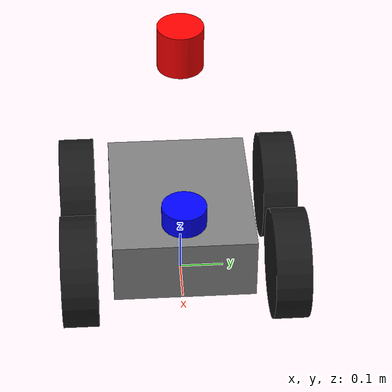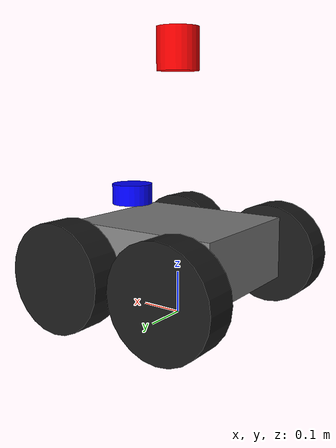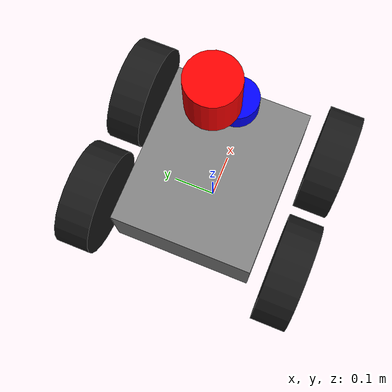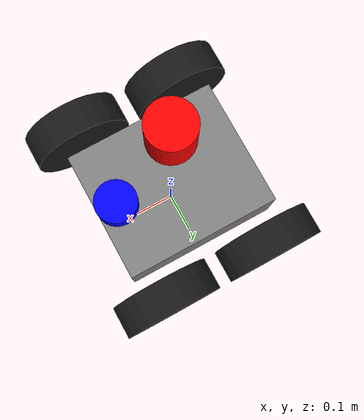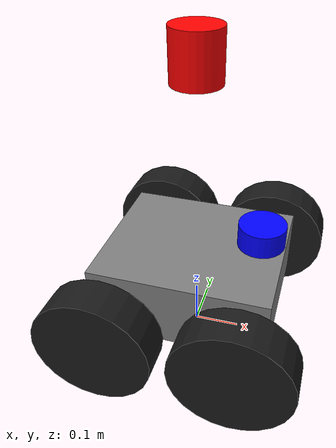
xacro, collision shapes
<?xml version="1.0"?>
<robot
  xmlns:xacro="http://ros.org/wiki/xacro"
  xmlns:controller="http://playerstage.sourceforge.net/gazebo/xmlschema/#controller"
  xmlns:interface="http://playerstage.sourceforge.net/gazebo/xmlschema/#interface"
  xmlns:sensor="http://playerstage.sourceforge.net/gazebo/xmlschema/#sensor"
  name="robot">

  <xacro:arg name="laser3d_collision" default="true"/>
  <xacro:arg name="body_height" default="0.15"/>
  <xacro:arg name="body_length" default="0.38"/>
  <xacro:arg name="body_width" default="0.32"/>
  <xacro:arg name="wheel_radius" default="0.125"/>
  <xacro:arg name="laser2d_mount_z" default="0.125"/>
  <xacro:arg name="laser3d_mount_z" default="0.475"/>
  <xacro:arg name="slope_aware_drive" default="false"/>

  <xacro:include filename="$(find mesh_navigation_tutorials_sim)/urdf/common.urdf.xacro" />
  <xacro:include filename="$(find mesh_navigation_tutorials_sim)/urdf/wheel.urdf.xacro" />

  <xacro:property name="M_PI" value="3.14159265359"/>

  <xacro:property name="imu_stdev" value="0.0001" />

  <xacro:property name="body_height" value="$(arg body_height)"/>
  <xacro:property name="body_length" value="$(arg body_length)"/>
  <xacro:property name="body_width" value="$(arg body_width)"/>

  <xacro:property name="axis_front" value="0.14"/>
  <xacro:property name="axis_back" value="-0.14"/>

  <xacro:property name="wheel_thickness" value="0.08"/>
  <xacro:property name="wheel_body_offset" value="${wheel_thickness/2 + 0.035}"/>
  <xacro:property name="wheel_radius" value="$(arg wheel_radius)"/>
  <xacro:property name="axis_height" value="-0.03"/>
  <xacro:property name="axis_right" value="${-body_width/2 - wheel_body_offset}"/>
  <xacro:property name="axis_left" value="${body_width/2 + wheel_body_offset}"/>
  <xacro:property name="axis_length" value="${body_width + 2 * wheel_body_offset}" />
  <xacro:property name="turning_adaptation" value="2.95" />

  <xacro:property name="body_mass" value="25.0"/>
  <xacro:property name="wheel_mass" value="5.0"/>

  <xacro:property name="imu_width" value="0.036"/>
  <xacro:property name="imu_length" value="0.038"/>
  <xacro:property name="imu_height" value="0.012"/>

  <xacro:property name="imu_offset_x" value="0"/>
  <xacro:property name="imu_offset_y" value="0"/>
  <xacro:property name="imu_offset_z" value="${- body_height/2 + 0.005 + 0.007}"/>

  <xacro:property name="em_body_length" value="0.11"/>
  <xacro:property name="em_body_width" value="0.04"/>
  <xacro:property name="em_body_height" value="0.03"/>

  <xacro:property name="em_button_radius" value="0.0125"/>
  <xacro:property name="em_button_depth" value="0.02" />

  <link name="base_footprint"/>
  <link name="base_link">
    <visual>
      <origin xyz="0 0 0" rpy="0 0 0" />
      <geometry>
        <box size="${body_length} ${body_width} ${body_height}"/>
      </geometry>
      <material name="silver" >
        <color rgba="0.5 0.5 0.5 1" />
      </material>
    </visual>
    <collision>
      <origin xyz="0 0 0" rpy="0 0 0" />
      <geometry>
        <box size="${body_length} ${body_width} ${body_height}"/>
      </geometry>
    </collision>
    <xacro:box_inertial
      x="${body_length}"
      y="${body_width}"
      z="${body_height}"
      mass="${body_mass}"/>
  </link>

  <joint name="base_footprint_to_base_joint" type="fixed">
    <origin xyz="0 0 ${wheel_radius - axis_height}" rpy="0 0 0" />
    <parent link="base_footprint"/>
    <child link="base_link" />
  </joint>

  <xacro:wheel name="left_front_wheel" parent="base_link">
    <origin xyz="${axis_front} ${axis_left} ${axis_height}" rpy="0 0 0"/>
  </xacro:wheel>

  <xacro:wheel name="left_rear_wheel" parent="base_link">
    <origin xyz="${axis_back} ${axis_left} ${axis_height}" rpy="0 0 0" />
  </xacro:wheel>

  <xacro:wheel name="right_front_wheel" parent="base_link">
    <origin xyz="${axis_front} ${axis_right} ${axis_height}" rpy="0 0 0"/>
  </xacro:wheel>

  <xacro:wheel name="right_rear_wheel" parent="base_link">
    <origin xyz="${axis_back} ${axis_right} ${axis_height}" rpy="0 0 0" />
  </xacro:wheel>

  <link name="imu">
    <visual>
      <origin xyz="0 0 0" rpy="0 0 0" />
      <geometry>
        <box size="${imu_length} ${imu_width} ${imu_height}"/>
      </geometry>
      <material name="white" >
        <color rgba="0.8 0.8 0.8 1" />
      </material>
    </visual>
  </link>

  <joint name="imu_to_base_joint" type="fixed">
    <parent link="base_link" />
    <child link="imu" />
    <origin xyz="${imu_offset_x} ${imu_offset_y} ${imu_offset_z}" rpy="${M_PI} 0 ${M_PI/2.0}" />
  </joint>

  <link name="laser2d">
    <visual>
      <origin xyz="0 0 0" rpy="0 0 0" />
      <geometry>
        <cylinder radius="0.05" length="0.05"/>
      </geometry>
      <material name="blue" >
        <color rgba="0 0 1 1" />
      </material>
    </visual>
    <collision>
      <geometry>
        <cylinder radius="0.05" length="0.05"/>
      </geometry>
    </collision>
     <xacro:cylinder_inertial
      radius="0.05"
      length="0.05"
      mass="0.05"
      />
  </link>

  <joint name="laser2d_to_base_joint" type="fixed">
    <parent link="base_link" />
    <child link="laser2d" />
    <origin xyz="${body_length/2 - 0.05} 0 $(arg laser2d_mount_z)"/>
  </joint>

  <link name="laser3d">
    <visual>
      <origin xyz="0 0 0" rpy="0 0 0" />
      <geometry>
        <cylinder radius="0.05" length="0.1"/>
      </geometry>
      <material name="red" >
        <color rgba="1 0 0 1" />
      </material>
    </visual>
    <xacro:if value="$(arg laser3d_collision)">
      <collision>
        <geometry>
          <cylinder radius="0.05" length="0.1"/>
        </geometry>
      </collision>
    </xacro:if>
     <xacro:cylinder_inertial
      radius="0.05"
      length="0.1"
      mass="0.1"
      />
  </link>

  <joint name="laser3d_to_base_joint" type="fixed">
    <parent link="base_link" />
    <child link="laser3d" />
    <origin xyz="0 0 $(arg laser3d_mount_z)"/>
  </joint>

  <!-- Gazebo Plugins -->

  <gazebo reference="imu" >
    <sensor name="imu" type="imu">
      <always_on>1</always_on>
      <update_rate>100</update_rate>
      <visualize>false</visualize>
      <topic>/model/robot/imu</topic>
      <frame_id>imu</frame_id>
      <gz_frame_id>imu</gz_frame_id>
      <ign_frame_id>imu</ign_frame_id>
    </sensor>
  </gazebo>

  <gazebo reference="laser2d">
    <sensor name="laser2d" type='gpu_lidar'>"
      <pose relative_to='laser2d'>0 0 0 0 0 0</pose>
      <topic>/model/robot/scan</topic>
      <update_rate>10</update_rate>
      <ray>
        <scan>
          <horizontal>
              <samples>270</samples>
              <resolution>1</resolution>
              <min_angle>-2.356194</min_angle>
              <max_angle> 2.356194</max_angle>
          </horizontal>
          <vertical>
              <samples>1</samples>
              <resolution>0.01</resolution>
              <min_angle>0</min_angle>
              <max_angle>0</max_angle>
          </vertical>
        </scan>
        <range>
            <min>0.08</min>
            <max>15.0</max>
            <resolution>0.01</resolution>
        </range>
      </ray>
      <always_on>1</always_on>
      <visualize>true</visualize>
      <frame_id>laser2d</frame_id>
      <gz_frame_id>laser2d</gz_frame_id>
      <ign_frame_id>laser2d</ign_frame_id>
    </sensor>
  </gazebo>

  <gazebo reference="laser3d">
    <sensor name="laser3d" type='gpu_lidar'>"
      <pose relative_to='laser3d'>0 0 0 0 0 0</pose>
      <topic>/model/robot/cloud</topic>
      <update_rate>10</update_rate>
      <ray>
        <scan>
          <horizontal>
              <samples>128</samples>
              <resolution>0.01</resolution>
              <min_angle>${-M_PI}</min_angle>
              <max_angle>${M_PI}</max_angle>
          </horizontal>
          <vertical>
              <samples>32</samples>
              <resolution>0.01</resolution>
              <min_angle>${-32.0 * M_PI / 180.0}</min_angle>
              <max_angle>${32.0 * M_PI / 180.0}</max_angle>
          </vertical>
        </scan>
        <range>
            <min>0.2</min>
            <max>100.0</max>
            <resolution>0.01</resolution>
        </range>
      </ray>
      <always_on>1</always_on>
      <visualize>true</visualize>
      <frame_id>laser3d</frame_id>
      <gz_frame_id>laser3d</gz_frame_id>
      <ign_frame_id>laser3d</ign_frame_id>
    </sensor>
  </gazebo>

  <xacro:if value="$(arg slope_aware_drive)">
    <gazebo>
      <plugin
          filename="libslope_aware_holonomic_drive_system.so"
          name="mesh_navigation_tutorials_sim::SlopeAwareHolonomicDrive">
        <topic>/model/robot/cmd_vel</topic>
        <command_timeout>0.5</command_timeout>
      </plugin>

      <plugin
          filename="libignition-gazebo-odometry-publisher-system.so"
          name="ignition::gazebo::systems::OdometryPublisher">
        <dimensions>2</dimensions>
        <odom_publish_frequency>50</odom_publish_frequency>
        <odom_frame>odom</odom_frame>
        <robot_base_frame>base_footprint</robot_base_frame>
        <odom_topic>/model/robot/odometry</odom_topic>
        <tf_topic>/model/robot/tf_odom</tf_topic>
      </plugin>
    </gazebo>
  </xacro:if>

  <xacro:unless value="$(arg slope_aware_drive)">
    <gazebo>
      <plugin
          filename="libignition-gazebo-diff-drive-system.so"
          name="ignition::gazebo::systems::DiffDrive">
        <num_wheel_pairs>2</num_wheel_pairs>

        <left_joint>left_front_wheel</left_joint>
        <right_joint>right_front_wheel</right_joint>
        <wheel_separation>${axis_length}</wheel_separation>
        <wheel_radius>${wheel_radius}</wheel_radius>

        <left_joint>left_rear_wheel</left_joint>
        <right_joint>right_rear_wheel</right_joint>
        <wheel_separation>${axis_length}</wheel_separation>
        <wheel_radius>${wheel_radius}</wheel_radius>

        <odom_publish_frequency>50</odom_publish_frequency>
        <frame_id>odom</frame_id>
        <child_frame_id>base_footprint</child_frame_id>
        <tf_topic>/model/robot/tf_odom</tf_topic>
      </plugin>
    </gazebo>
  </xacro:unless>

  <gazebo>
    <plugin
      filename="libignition-gazebo-joint-state-publisher-system.so"
      name="ignition::gazebo::systems::JointStatePublisher">
      <joint_name>right_front_wheel</joint_name>
      <joint_name>left_front_wheel</joint_name>
      <joint_name>right_rear_wheel</joint_name>
      <joint_name>left_rear_wheel</joint_name>
      <topic>/model/robot/joint_states</topic>
    </plugin>

  </gazebo>

  <gazebo>
    <plugin
      filename="ignition-gazebo-pose-publisher-system"
      name="gz::sim::systems::PosePublisher">
      <use_pose_vector_msg>true</use_pose_vector_msg>
      <publish_nested_model_pose>true</publish_nested_model_pose>
      <static_publisher>true</static_publisher>
    </plugin>
  </gazebo>

</robot>

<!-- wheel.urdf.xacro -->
<robot xmlns:xacro="http://ros.org/wiki/xacro" name="wheel">
    <xacro:macro name="wheel" params="name parent *joint_pose">
        <link name="${name}_link">

            <visual>
                <origin xyz="0 0 0" rpy="0 0 ${M_PI/2}" />
                <geometry>
                    <!-- The source visual is radius 0.125 m and width 0.08 m. -->
                    <mesh
                      filename="package://mesh_navigation_tutorials_sim/meshes/wheel.stl"
                      scale="${wheel_thickness / 0.08} ${wheel_radius / 0.125} ${wheel_radius / 0.125}"/>
                </geometry>
                <material name="wheelcolor" >
                    <color rgba="0.1 0.1 0.1 1" />
                </material>
            </visual>

            <collision>
                <origin xyz="0 0 0" rpy="${M_PI/2} 0 0" />
                <geometry>
                    <cylinder length="${wheel_thickness}" radius="${wheel_radius}"/>
                </geometry>
            </collision>

            <xacro:cylinder_inertial_with_origin radius="${wheel_radius}" length="${wheel_thickness}" mass="${wheel_mass}">
                <origin xyz="0 0 0" rpy="${M_PI/2} 0 0"/>
            </xacro:cylinder_inertial_with_origin>
        </link>

        <gazebo reference="${name}_link">
            <mu1 value="1.0"/>
            <mu2 value="1.0"/>
            <fdir1 value="1 0 0"/>
            <material>Gazebo/DarkGrey</material>
        </gazebo>

        <joint name="${name}" type="continuous">
            <parent link="${parent}"/>
            <child link="${name}_link"/>
            <xacro:insert_block name="joint_pose"/>
            <axis xyz="0 1 0" rpy="0 0 0" />
        </joint>

    </xacro:macro>
</robot>
